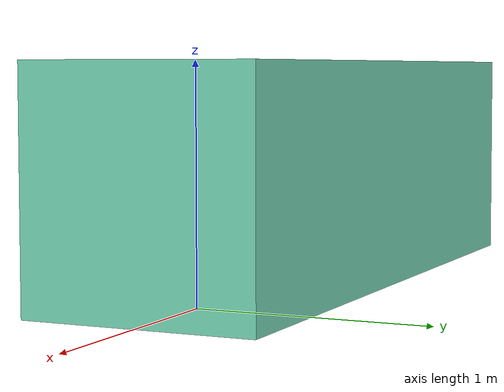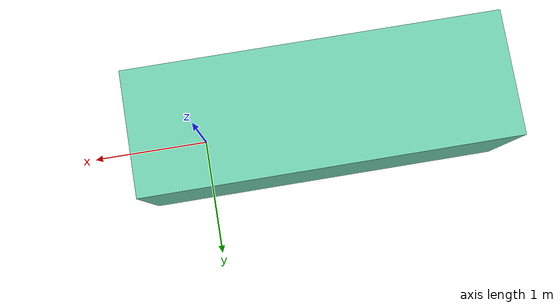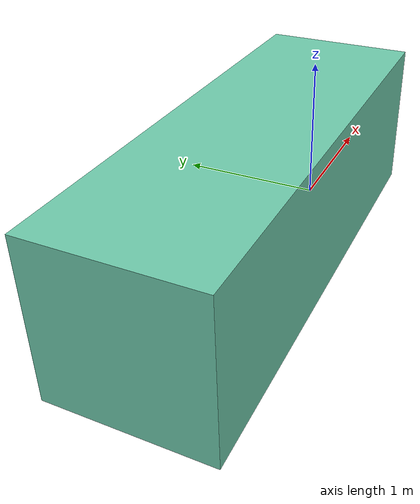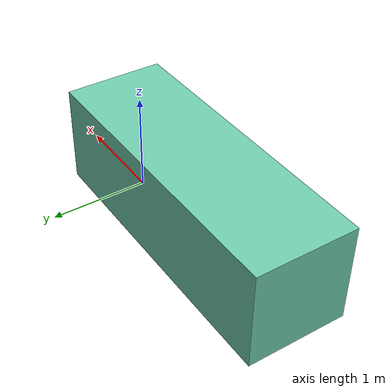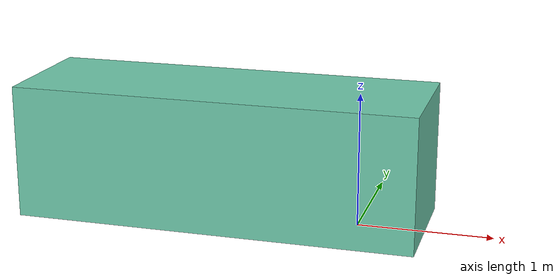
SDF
<?xml version='1.0'?>
<sdf version='1.7'>
  <model name='yesil_3'>
    <pose>-1 0 0 0 -0 0</pose>
    <link name='Wall_6'>
      <collision name='Wall_6_Collision'>
        <geometry>
          <box>
            <size>3 1 1</size>
          </box>
        </geometry>
        <pose>0 0 0.5 0 -0 0</pose>
      </collision>
      <visual name='Wall_6_Visual'>
        <pose>0 0 0.5 0 -0 0</pose>
        <geometry>
          <box>
            <size>3 1 1</size>
          </box>
        </geometry>
        <material>
          <script>
            <uri>file://media/materials/scripts/gazebo.material</uri>
            <name>Gazebo/Grey</name>
          </script>
          <ambient>0.435294 0.796078 0.67451 1</ambient>
        </material>
        <meta>
          <layer>0</layer>
        </meta>
      </visual>
      <pose>0 0 0 0 -0 3.14159</pose>
    </link>
    <static>1</static>
  </model>
</sdf>
